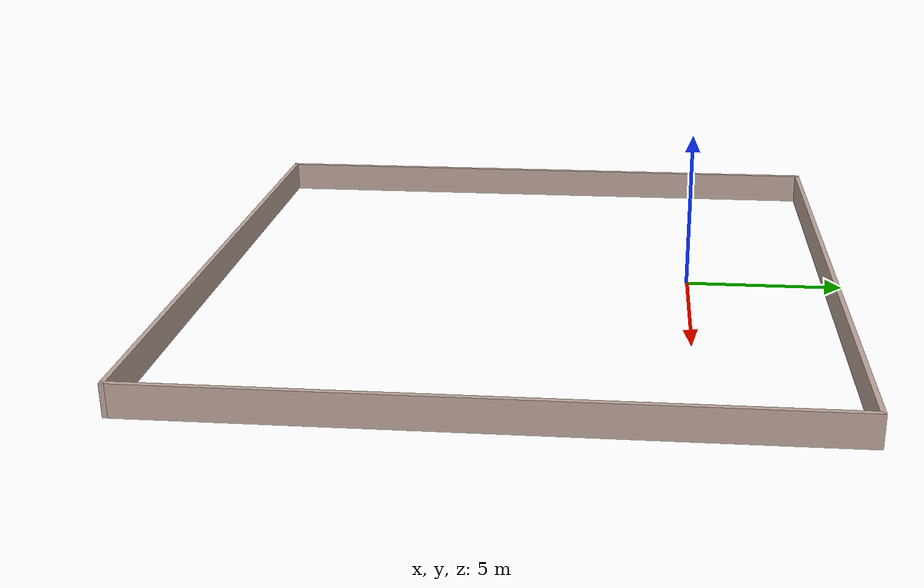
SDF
<?xml version='1.0'?>
<sdf version='1.7'>
  <model name='walls'>
    <static>true</static>
    <pose>0.796 -5.455 0 0 -0 0</pose>
    <link name='Wall_11'>
      <collision name='Wall_11_Collision'>
        <geometry>
          <box>
            <size>20 0.15 1</size>
          </box>
        </geometry>
        <pose>0 0 0.5 0 -0 0</pose>
      </collision>
      <visual name='Wall_11_Visual'>
        <pose>0 0 0.5 0 -0 0</pose>
        <geometry>
          <box>
            <size>20 0.15 1</size>
          </box>
        </geometry>
        <material>
          <script>
            <uri>file://media/materials/scripts/gazebo.material</uri>
            <name>Gazebo/Grey</name>
          </script>
          <ambient>0.760784 0.662745 0.627451 1</ambient>
        </material>
        <meta>
          <layer>0</layer>
        </meta>
      </visual>
      <pose>0 9.925 0 0 -0 0</pose>
    </link>
    <link name='Wall_18'>
      <collision name='Wall_18_Collision'>
        <geometry>
          <box>
            <size>20 0.15 1</size>
          </box>
        </geometry>
        <pose>0 0 0.5 0 -0 0</pose>
      </collision>
      <visual name='Wall_18_Visual'>
        <pose>0 0 0.5 0 -0 0</pose>
        <geometry>
          <box>
            <size>20 0.15 1</size>
          </box>
        </geometry>
        <material>
          <script>
            <uri>file://media/materials/scripts/gazebo.material</uri>
            <name>Gazebo/Grey</name>
          </script>
          <ambient>0.760784 0.662745 0.627451 1</ambient>
        </material>
        <meta>
          <layer>0</layer>
        </meta>
      </visual>
      <pose>-9.925 0 0 0 -0 -1.5708</pose>
    </link>
    <link name='Wall_20'>
      <collision name='Wall_20_Collision'>
        <geometry>
          <box>
            <size>20 0.15 1</size>
          </box>
        </geometry>
        <pose>0 0 0.5 0 -0 0</pose>
      </collision>
      <visual name='Wall_20_Visual'>
        <pose>0 0 0.5 0 -0 0</pose>
        <geometry>
          <box>
            <size>20 0.15 1</size>
          </box>
        </geometry>
        <material>
          <script>
            <uri>file://media/materials/scripts/gazebo.material</uri>
            <name>Gazebo/Grey</name>
          </script>
          <ambient>0.760784 0.662745 0.627451 1</ambient>
        </material>
        <meta>
          <layer>0</layer>
        </meta>
      </visual>
      <pose>9.925 0 0 0 -0 -1.5708</pose>
    </link>
    <link name='Wall_22'>
      <collision name='Wall_22_Collision'>
        <geometry>
          <box>
            <size>20 0.15 1</size>
          </box>
        </geometry>
        <pose>0 0 0.5 0 -0 0</pose>
      </collision>
      <visual name='Wall_22_Visual'>
        <pose>0 0 0.5 0 -0 0</pose>
        <geometry>
          <box>
            <size>20 0.15 1</size>
          </box>
        </geometry>
        <material>
          <script>
            <uri>file://media/materials/scripts/gazebo.material</uri>
            <name>Gazebo/Grey</name>
          </script>
          <ambient>0.760784 0.662745 0.627451 1</ambient>
        </material>
        <meta>
          <layer>0</layer>
        </meta>
      </visual>
      <pose>0 -9.925 0 0 -0 0</pose>
    </link>
    <static>1</static>
  </model>
</sdf>
